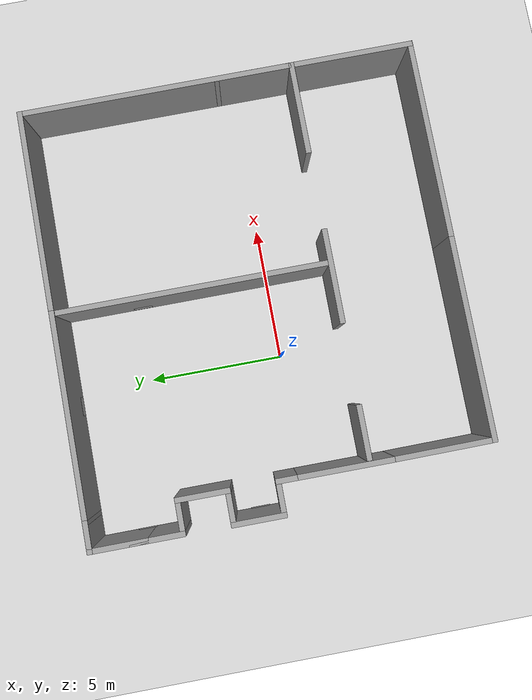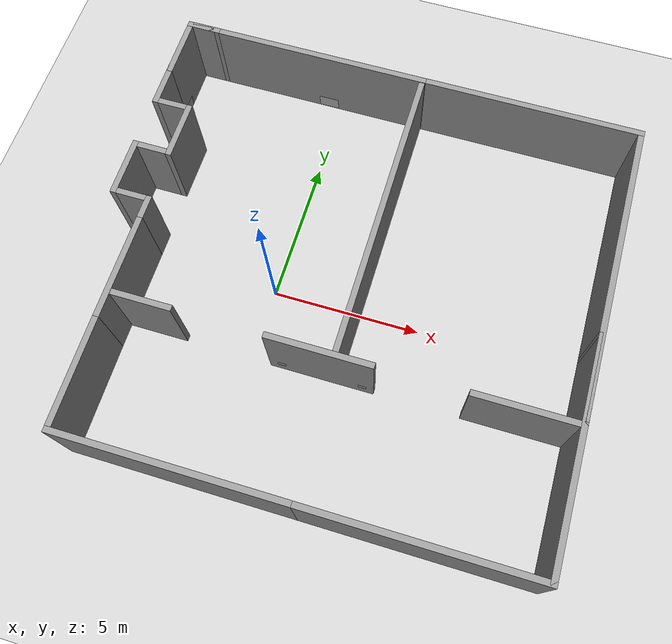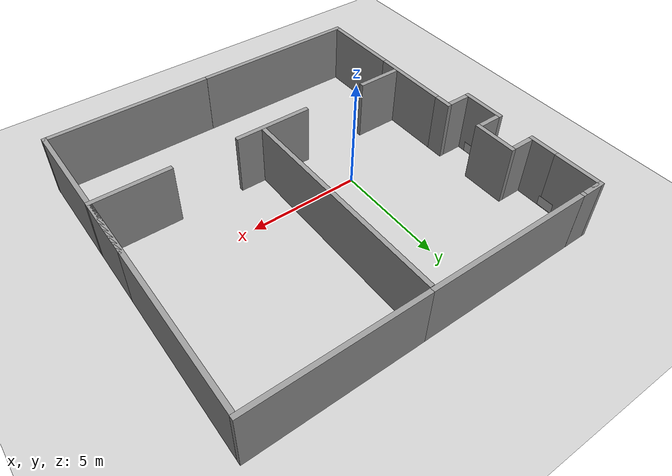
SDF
<sdf version="1.7">
 <world name="default">
  <light name="sun" type="directional">
   <pose>0 0 10 0 -0 0</pose>
   <diffuse>0.8 0.8 0.8 1</diffuse>
   <specular>0.2 0.2 0.2 1</specular>
   <attenuation>
    <range>1000</range>
    <constant>0.9</constant>
    <linear>0.01</linear>
    <quadratic>0.001</quadratic>
   </attenuation>
   <direction>-0.5 0.1 -0.9</direction>
   <spot><inner_angle>0</inner_angle><outer_angle>0</outer_angle><falloff>0</falloff></spot>
  </light>
  <model name="ground_plane">
   <static>1</static>
   <link name="link">
    <collision name="collision">
     <geometry><plane><normal>0 0 1</normal><size>100 100</size></plane></geometry>
     <surface>
      <contact><collide_bitmask>65535</collide_bitmask></contact>
      <friction><ode><mu>100</mu><mu2>50</mu2></ode></friction>
     </surface>
    </collision>
    <visual name="visual">
     <cast_shadows>0</cast_shadows>
     <geometry><plane><normal>0 0 1</normal><size>100 100</size></plane></geometry>
     <material>
      <script><uri>file://media/materials/scripts/gazebo.material</uri><name>Gazebo/Grey</name></script>
     </material>
    </visual>
   </link>
  </model>
  <gravity>0 0 -9.8</gravity>
  <magnetic_field>6e-06 2.3e-05 -4.2e-05</magnetic_field>
  <atmosphere type="adiabatic"/>
  <physics type="ode">
   <real_time_update_rate>1000</real_time_update_rate>
   <max_step_size>0.001</max_step_size>
   <real_time_factor>1</real_time_factor>
   <ode>
    <solver>
     <type>quick</type>
     <iters>150</iters>
     <precon_iters>0</precon_iters>
     <sor>1.4</sor>
     <use_dynamic_moi_rescaling>1</use_dynamic_moi_rescaling>
    </solver>
    <constraints>
     <cfm>1e-05</cfm>
     <erp>0.2</erp>
     <contact_max_correcting_vel>2000</contact_max_correcting_vel>
     <contact_surface_layer>0.01</contact_surface_layer>
    </constraints>
   </ode>
  </physics>
  <scene><ambient>0.4 0.4 0.4 1</ambient><background>0.7 0.7 0.7 1</background><shadows>1</shadows></scene>
  <audio><device>default</device></audio>
  <spherical_coordinates>
   <surface_model>EARTH_WGS84</surface_model>
   <latitude_deg>0</latitude_deg>
   <longitude_deg>0</longitude_deg>
   <elevation>0</elevation>
   <heading_deg>0</heading_deg>
  </spherical_coordinates>
  <model name="grey_wall_small">
   <static>1</static>
   <link name="link">
    <pose>0 0 1.4 0 -0 0</pose>
    <collision name="collision"><geometry><box><size>7.5 0.2 2.8</size></box></geometry></collision>
    <visual name="visual">
     <cast_shadows>0</cast_shadows>
     <geometry><box><size>7.5 0.2 2.8</size></box></geometry>
     <material>
      <script>
       <uri>model://grey_wall_small/materials/scripts</uri>
       <uri>model://grey_wall_small/materials/textures</uri>
       <name>vrc/grey_wall_small</name>
      </script>
     </material>
    </visual>
   </link>
   <pose>-0.720285 7.87909 0 0 -0 0</pose>
  </model>
  <model name="grey_wall_small_clone">
   <static>1</static>
   <link name="link">
    <pose>0 0 1.4 0 -0 0</pose>
    <collision name="collision"><geometry><box><size>7.5 0.2 2.8</size></box></geometry></collision>
    <visual name="visual">
     <cast_shadows>0</cast_shadows>
     <geometry><box><size>7.5 0.2 2.8</size></box></geometry>
     <material>
      <script>
       <uri>model://grey_wall_small/materials/scripts</uri>
       <uri>model://grey_wall_small/materials/textures</uri>
       <name>vrc/grey_wall_small</name>
      </script>
     </material>
    </visual>
   </link>
   <pose>6.77422 7.88164 0 0 -0 0</pose>
  </model>
  <model name="grey_wall_medium">
   <static>1</static>
   <link name="link">
    <pose>0 0 1.4 0 -0 0</pose>
    <collision name="collision"><geometry><box><size>10 0.2 2.8</size></box></geometry></collision>
    <visual name="visual">
     <cast_shadows>0</cast_shadows>
     <geometry><box><size>10 0.2 2.8</size></box></geometry>
     <material>
      <script>
       <uri>model://grey_wall_medium/materials/scripts</uri>
       <uri>model://grey_wall_medium/materials/textures</uri>
       <name>vrc/grey_wall_medium</name>
      </script>
     </material>
    </visual>
   </link>
   <pose>10.434 2.78025 0 0 0 -1.56842</pose>
  </model>
  <model name="grey_wall_medium_0">
   <static>1</static>
   <link name="link">
    <pose>0 0 1.4 0 -0 0</pose>
    <collision name="collision"><geometry><box><size>10 0.2 2.8</size></box></geometry></collision>
    <visual name="visual">
     <cast_shadows>0</cast_shadows>
     <geometry><box><size>10 0.2 2.8</size></box></geometry>
     <material>
      <script>
       <uri>model://grey_wall_medium/materials/scripts</uri>
       <uri>model://grey_wall_medium/materials/textures</uri>
       <name>vrc/grey_wall_medium</name>
      </script>
     </material>
    </visual>
   </link>
   <pose>2.92051 2.76613 0 0 0 -1.56961</pose>
  </model>
  <model name="grey_wall_smaller_0">
   <static>1</static>
   <link name="link">
    <pose>0 0 1.4 0 -0 0</pose>
    <collision name="collision"><geometry><box><size>3.5 0.2 2.8</size></box></geometry></collision>
    <visual name="visual">
     <cast_shadows>0</cast_shadows>
     <geometry><box><size>3.5 0.2 2.8</size></box></geometry>
     <material>
      <script>
       <uri>model://grey_wall_smaller/materials/scripts</uri>
       <uri>model://grey_wall_smaller/materials/textures</uri>
       <name>vrc/grey_wall_smaller</name>
      </script>
     </material>
    </visual>
   </link>
   <pose>2.42415 -2.33372 0 0 -0 0</pose>
  </model>
  <model name="grey_wall_smaller_1">
   <static>1</static>
   <link name="link">
    <pose>0 0 1.4 0 -0 0</pose>
    <collision name="collision"><geometry><box><size>3.5 0.2 2.8</size></box></geometry></collision>
    <visual name="visual">
     <cast_shadows>0</cast_shadows>
     <geometry><box><size>3.5 0.2 2.8</size></box></geometry>
     <material>
      <script>
       <uri>model://grey_wall_smaller/materials/scripts</uri>
       <uri>model://grey_wall_smaller/materials/textures</uri>
       <name>vrc/grey_wall_smaller</name>
      </script>
     </material>
    </visual>
   </link>
   <pose>8.79723 -2.31848 0 0 -0 0</pose>
  </model>
  <model name="grey_wall_smaller_2">
   <static>1</static>
   <link name="link">
    <pose>0 0 1.4 0 -0 0</pose>
    <collision name="collision"><geometry><box><size>3.5 0.2 2.8</size></box></geometry></collision>
    <visual name="visual">
     <cast_shadows>0</cast_shadows>
     <geometry><box><size>3.5 0.2 2.8</size></box></geometry>
     <material>
      <script>
       <uri>model://grey_wall_smaller/materials/scripts</uri>
       <uri>model://grey_wall_smaller/materials/textures</uri>
       <name>vrc/grey_wall_smaller</name>
      </script>
     </material>
    </visual>
   </link>
   <pose>-4.36149 -1.46454 0 0 0 -1.57176</pose>
  </model>
  <model name="grey_wall_small_1">
   <static>1</static>
   <link name="link">
    <pose>0 0 1.4 0 -0 0</pose>
    <collision name="collision"><geometry><box><size>7.5 0.2 2.8</size></box></geometry></collision>
    <visual name="visual">
     <cast_shadows>0</cast_shadows>
     <geometry><box><size>7.5 0.2 2.8</size></box></geometry>
     <material>
      <script>
       <uri>model://grey_wall_small/materials/scripts</uri>
       <uri>model://grey_wall_small/materials/textures</uri>
       <name>vrc/grey_wall_small</name>
      </script>
     </material>
    </visual>
   </link>
   <pose>-0.682987 -6.80907 0 0 -0 0</pose>
  </model>
  <model name="grey_wall_smaller">
   <static>1</static>
   <link name="link">
    <pose>0 0 1.4 0 -0 0</pose>
    <collision name="collision"><geometry><box><size>3.5 0.2 2.8</size></box></geometry></collision>
    <visual name="visual">
     <cast_shadows>0</cast_shadows>
     <geometry><box><size>3.5 0.2 2.8</size></box></geometry>
     <material>
      <script>
       <uri>model://grey_wall_smaller/materials/scripts</uri>
       <uri>model://grey_wall_smaller/materials/textures</uri>
       <name>vrc/grey_wall_smaller</name>
      </script>
     </material>
    </visual>
   </link>
   <pose>-4.35036 -4.96157 0 0 -0 1.57757</pose>
  </model>
  <model name="grey_wall_small_2">
   <static>1</static>
   <link name="link">
    <pose>0 0 1.4 0 -0 0</pose>
    <collision name="collision"><geometry><box><size>7.5 0.2 2.8</size></box></geometry></collision>
    <visual name="visual">
     <cast_shadows>0</cast_shadows>
     <geometry><box><size>7.5 0.2 2.8</size></box></geometry>
     <material>
      <script>
       <uri>model://grey_wall_small/materials/scripts</uri>
       <uri>model://grey_wall_small/materials/textures</uri>
       <name>vrc/grey_wall_small</name>
      </script>
     </material>
    </visual>
   </link>
   <pose>6.81082 -6.81042 0 0 -0 0</pose>
  </model>
  <model name="grey_wall_small_3">
   <static>1</static>
   <link name="link">
    <pose>0 0 1.4 0 -0 0</pose>
    <collision name="collision"><geometry><box><size>7.5 0.2 2.8</size></box></geometry></collision>
    <visual name="visual">
     <cast_shadows>0</cast_shadows>
     <geometry><box><size>7.5 0.2 2.8</size></box></geometry>
     <material>
      <script>
       <uri>model://grey_wall_small/materials/scripts</uri>
       <uri>model://grey_wall_small/materials/textures</uri>
       <name>vrc/grey_wall_small</name>
      </script>
     </material>
    </visual>
   </link>
   <pose>10.4493 -3.15028 0 0 -0 1.57351</pose>
  </model>
  <model name="grey_wall_tiny">
   <static>1</static>
   <link name="link">
    <pose>0 0 1.4 0 -0 0</pose>
    <collision name="collision"><geometry><box><size>2 0.2 2.8</size></box></geometry></collision>
    <visual name="visual">
     <cast_shadows>0</cast_shadows>
     <geometry><box><size>2 0.2 2.8</size></box></geometry>
     <material>
      <script>
       <uri>model://grey_wall_tiny/materials/scripts</uri>
       <uri>model://grey_wall_tiny/materials/textures</uri>
       <name>vrc/grey_wall_tiny</name>
      </script>
     </material>
    </visual>
   </link>
   <pose>-3.2561 -2.32762 0 0 -0 0</pose>
  </model>
  <model name="red_image">
   <static>1</static>
   <link name="link">
    <visual name="visual">
     <pose>-6 -0.11 0.4 1.57 -0 0</pose>
     <cast_shadows>0</cast_shadows>
     <geometry><plane><normal>0 0 1</normal><size>0.279 0.21</size></plane></geometry>
     <material>
      <script>
       <uri>model://red_image/materials/scripts</uri>
       <uri>model://red_image/materials/textures</uri>
       <name>red_image/Image</name>
      </script>
     </material>
    </visual>
   </link>
   <pose>9.8 -2.329 0.1 0 -0 0</pose>
  </model>
  <model name="green_image">
   <static>1</static>
   <link name="link">
    <visual name="visual">
     <pose>-6 -0.11 0.4 1.57 -0 0</pose>
     <cast_shadows>0</cast_shadows>
     <geometry><plane><normal>0 0 1</normal><size>0.279 0.21</size></plane></geometry>
     <material>
      <script>
       <uri>model://green_image/materials/scripts</uri>
       <uri>model://green_image/materials/textures</uri>
       <name>green_image/Image</name>
      </script>
     </material>
    </visual>
   </link>
   <pose>7.1 -2.32966 0.1 0 -0 0</pose>
  </model>
  <light name="user_point_light_0" type="point">
   <pose>3.79344 -5.28695 1 0 -0 0</pose>
   <diffuse>0.5 0.5 0.5 1</diffuse>
   <specular>0.1 0.1 0.1 1</specular>
   <attenuation>
    <range>20</range>
    <constant>0.5</constant>
    <linear>0.01</linear>
    <quadratic>0.001</quadratic>
   </attenuation>
   <cast_shadows>0</cast_shadows>
   <direction>0 0 -1</direction>
   <spot><inner_angle>0</inner_angle><outer_angle>0</outer_angle><falloff>0</falloff></spot>
  </light>
  <model name="window1">
   <static>1</static>
   <link name="robot_link">
    <collision name="body_collision">
     <geometry><plane><size>0.707 0.5</size><normal>0 0 1</normal></plane></geometry>
    </collision>
    <visual name="body_visual">
     <cast_shadows>0</cast_shadows>
     <geometry><plane><size>0.707 0.5</size><normal>0 0 1</normal></plane></geometry>
     <material>
      <script>
       <uri>model://window1/materials/scripts/</uri>
       <uri>model://window1/materials/textures/</uri>
       <name>RepeatedTexture1</name>
      </script>
     </material>
    </visual>
   </link>
   <pose>-5.41 6.07 0.28 1.62 -0 1.57</pose>
  </model>
  <model name="window2">
   <static>1</static>
   <link name="robot_link">
    <collision name="body_collision">
     <geometry><plane><size>0.707 0.5</size><normal>0 0 1</normal></plane></geometry>
    </collision>
    <visual name="body_visual">
     <cast_shadows>0</cast_shadows>
     <geometry><plane><size>0.707 0.5</size><normal>0 0 1</normal></plane></geometry>
     <material>
      <script>
       <uri>model://window2/materials/scripts/</uri>
       <uri>model://window2/materials/textures/</uri>
       <name>RepeatedTexture2</name>
      </script>
     </material>
    </visual>
   </link>
   <pose>-0.5 7.771 0.28 1.57 -0 0</pose>
  </model>
  <model name="grey_wall_tiny_1">
   <static>1</static>
   <link name="link">
    <pose>0 0 1.4 0 -0 0</pose>
    <collision name="collision"><geometry><box><size>1 0.2 2.8</size></box></geometry></collision>
    <visual name="visual">
     <cast_shadows>0</cast_shadows>
     <geometry><box><size>1 0.2 2.8</size></box></geometry>
     <material>
      <script>
       <uri>model://grey_wall_tinier/materials/scripts</uri>
       <uri>model://grey_wall_tinier/materials/textures</uri>
       <name>vrc/grey_wall_tinier</name>
      </script>
     </material>
    </visual>
   </link>
   <pose>-4.94924 0.97838 0 0 -0 0</pose>
  </model>
  <model name="grey_wall_micro">
   <static>1</static>
   <link name="link">
    <pose>0 0 1.4 0 -0 0</pose>
    <collision name="collision"><geometry><box><size>0.8 0.2 2.8</size></box></geometry></collision>
    <visual name="visual">
     <cast_shadows>0</cast_shadows>
     <geometry><box><size>0.8 0.2 2.8</size></box></geometry>
     <material>
      <script>
       <uri>model://grey_wall_micro/materials/scripts</uri>
       <uri>model://grey_wall_micro/materials/textures</uri>
       <name>vrc/grey_wall_micro</name>
      </script>
     </material>
    </visual>
   </link>
   <pose>-4.35918 0.678338 0 0 -0 1.57</pose>
  </model>
  <model name="grey_wall_tiny_0">
   <static>1</static>
   <link name="link">
    <pose>0 0 1.4 0 -0 0</pose>
    <collision name="collision"><geometry><box><size>2 0.2 2.8</size></box></geometry></collision>
    <visual name="visual">
     <cast_shadows>0</cast_shadows>
     <geometry><box><size>2 0.2 2.8</size></box></geometry>
     <material>
      <script>
       <uri>model://grey_wall_tiny/materials/scripts</uri>
       <uri>model://grey_wall_tiny/materials/textures</uri>
       <name>vrc/grey_wall_tiny</name>
      </script>
     </material>
    </visual>
   </link>
   <pose>-5.54645 1.87819 0 0 0 -1.57</pose>
  </model>
  <model name="grey_wall_tiny_1_clone">
   <static>1</static>
   <link name="link">
    <pose>0 0 1.4 0 -0 0</pose>
    <collision name="collision"><geometry><box><size>1 0.2 2.8</size></box></geometry></collision>
    <visual name="visual">
     <cast_shadows>0</cast_shadows>
     <geometry><box><size>1 0.2 2.8</size></box></geometry>
     <material>
      <script>
       <uri>model://grey_wall_tinier/materials/scripts</uri>
       <uri>model://grey_wall_tinier/materials/textures</uri>
       <name>vrc/grey_wall_tinier</name>
      </script>
     </material>
    </visual>
   </link>
   <pose>-4.95475 2.77813 0 0 -0 0</pose>
  </model>
  <model name="grey_wall_tiny_2">
   <static>1</static>
   <link name="link">
    <pose>0 0 1.4 0 -0 0</pose>
    <collision name="collision"><geometry><box><size>2 0.2 2.8</size></box></geometry></collision>
    <visual name="visual">
     <cast_shadows>0</cast_shadows>
     <geometry><box><size>2 0.2 2.8</size></box></geometry>
     <material>
      <script>
       <uri>model://grey_wall_tiny/materials/scripts</uri>
       <uri>model://grey_wall_tiny/materials/textures</uri>
       <name>vrc/grey_wall_tiny</name>
      </script>
     </material>
    </visual>
   </link>
   <pose>-4.35439 3.67624 0 0 -0 1.57</pose>
  </model>
  <model name="window3">
   <static>1</static>
   <link name="robot_link">
    <collision name="body_collision">
     <geometry><plane><size>0.707 0.5</size><normal>0 0 1</normal></plane></geometry>
    </collision>
    <visual name="body_visual">
     <cast_shadows>0</cast_shadows>
     <geometry><plane><size>0.707 0.5</size><normal>0 0 1</normal></plane></geometry>
     <material>
      <script>
       <uri>model://window3/materials/scripts/</uri>
       <uri>model://window3/materials/textures/</uri>
       <name>RepeatedTexture3</name>
      </script>
     </material>
    </visual>
   </link>
   <pose>-5.41 1.771 0.28 1.62 -0 1.57</pose>
  </model>
  <model name="grey_wall_tiny_1_clone_clone_clone">
   <static>1</static>
   <link name="link">
    <pose>0 0 1.4 0 -0 0</pose>
    <collision name="collision"><geometry><box><size>1 0.2 2.8</size></box></geometry></collision>
    <visual name="visual">
     <cast_shadows>0</cast_shadows>
     <geometry><box><size>1 0.2 2.8</size></box></geometry>
     <material>
      <script>
       <uri>model://grey_wall_tinier/materials/scripts</uri>
       <uri>model://grey_wall_tinier/materials/textures</uri>
       <name>vrc/grey_wall_tinier</name>
      </script>
     </material>
    </visual>
   </link>
   <pose>-4.9527 7.88023 0 0 -0 0</pose>
  </model>
  <model name="grey_wall_tiny_1_clone_clone_clone_0">
   <static>1</static>
   <link name="link">
    <pose>0 0 1.4 0 -0 0</pose>
    <collision name="collision"><geometry><box><size>1 0.2 2.8</size></box></geometry></collision>
    <visual name="visual">
     <cast_shadows>0</cast_shadows>
     <geometry><box><size>1 0.2 2.8</size></box></geometry>
     <material>
      <script>
       <uri>model://grey_wall_tinier/materials/scripts</uri>
       <uri>model://grey_wall_tinier/materials/textures</uri>
       <name>vrc/grey_wall_tinier</name>
      </script>
     </material>
    </visual>
   </link>
   <pose>-5.13186 7.87961 0 0 -0 0</pose>
  </model>
  <model name="grey_wall_tiny_1_clone_clone_clone_1">
   <static>1</static>
   <link name="link">
    <pose>0 0 1.4 0 -0 0</pose>
    <collision name="collision"><geometry><box><size>1 0.2 2.8</size></box></geometry></collision>
    <visual name="visual">
     <cast_shadows>0</cast_shadows>
     <geometry><box><size>1 0.2 2.8</size></box></geometry>
     <material>
      <script>
       <uri>model://grey_wall_tinier/materials/scripts</uri>
       <uri>model://grey_wall_tinier/materials/textures</uri>
       <name>vrc/grey_wall_tinier</name>
      </script>
     </material>
    </visual>
   </link>
   <pose>-4.9334 4.57614 -0.00041 0 -0 0</pose>
  </model>
  <model name="grey_wall_tiny_0_clone">
   <static>1</static>
   <link name="link">
    <pose>0 0 1.4 0 -0 0</pose>
    <collision name="collision"><geometry><box><size>2 0.2 2.8</size></box></geometry></collision>
    <visual name="visual">
     <cast_shadows>0</cast_shadows>
     <geometry><box><size>2 0.2 2.8</size></box></geometry>
     <material>
      <script>
       <uri>model://grey_wall_tiny/materials/scripts</uri>
       <uri>model://grey_wall_tiny/materials/textures</uri>
       <name>vrc/grey_wall_tiny</name>
      </script>
     </material>
    </visual>
   </link>
   <pose>-5.53154 6.79376 0 0 0 -1.57</pose>
  </model>
  <model name="grey_wall_tiny_0_clone_clone">
   <static>1</static>
   <link name="link">
    <pose>0 0 1.4 0 -0 0</pose>
    <collision name="collision"><geometry><box><size>2 0.2 2.8</size></box></geometry></collision>
    <visual name="visual">
     <cast_shadows>0</cast_shadows>
     <geometry><box><size>2 0.2 2.8</size></box></geometry>
     <material>
      <script>
       <uri>model://grey_wall_tiny/materials/scripts</uri>
       <uri>model://grey_wall_tiny/materials/textures</uri>
       <name>vrc/grey_wall_tiny</name>
      </script>
     </material>
    </visual>
   </link>
   <pose>-5.53099 5.476 0 0 0 -1.57</pose>
  </model>
  <model name="poster">
   <static>1</static>
   <link name="robot_link">
    <collision name="body_collision">
     <geometry><plane><size>0.707 0.5</size><normal>0 0 1</normal></plane></geometry>
    </collision>
    <visual name="body_visual">
     <cast_shadows>0</cast_shadows>
     <geometry><plane><size>0.707 0.5</size><normal>0 0 1</normal></plane></geometry>
     <material>
      <script>
       <uri>model://poster/materials/scripts/</uri>
       <uri>model://poster/materials/textures/</uri>
       <name>RepeatedTexturePoster</name>
      </script>
     </material>
    </visual>
   </link>
   <pose>2.79871 4.84226 0.5 1.57 0 -1.57</pose>
  </model>
 </world>
</sdf>
